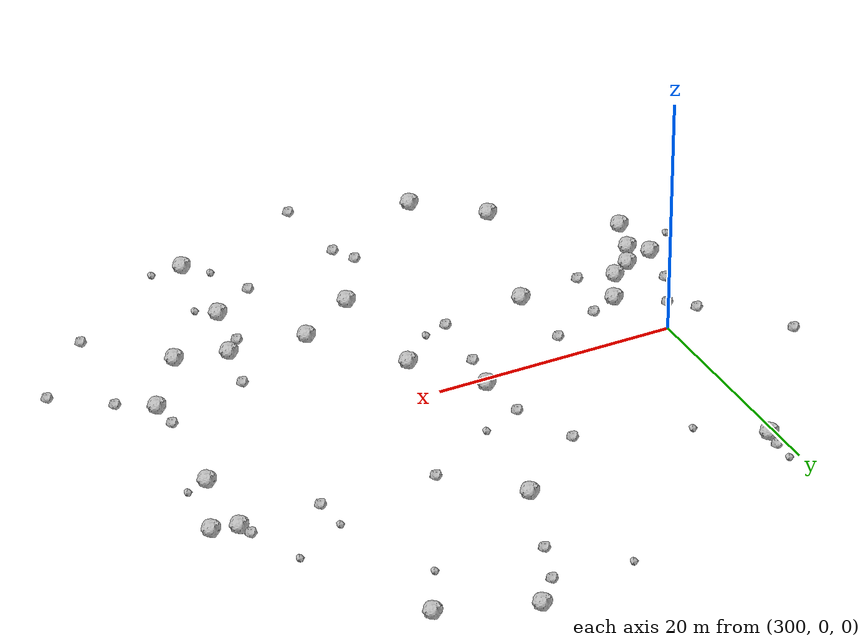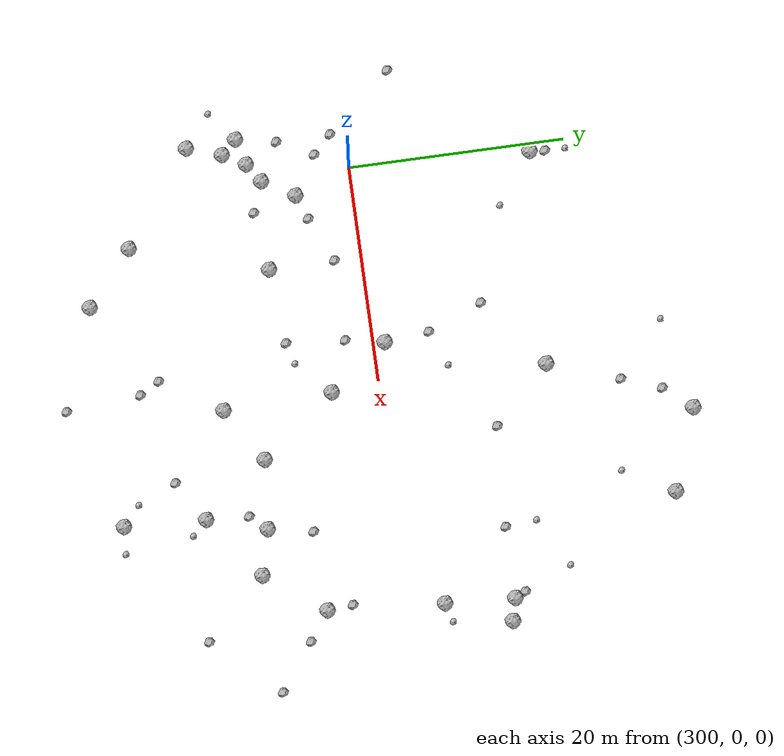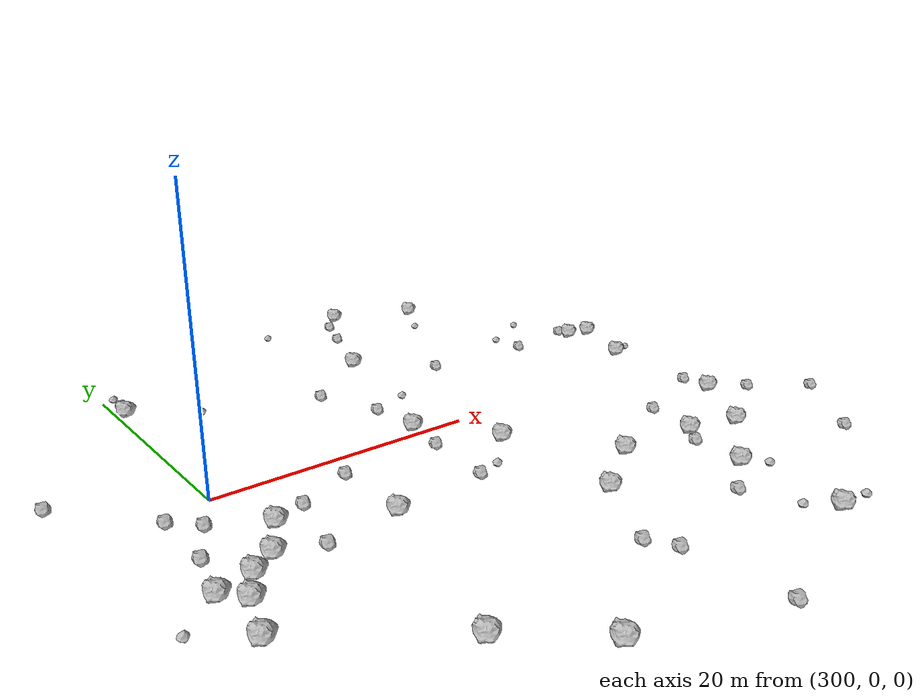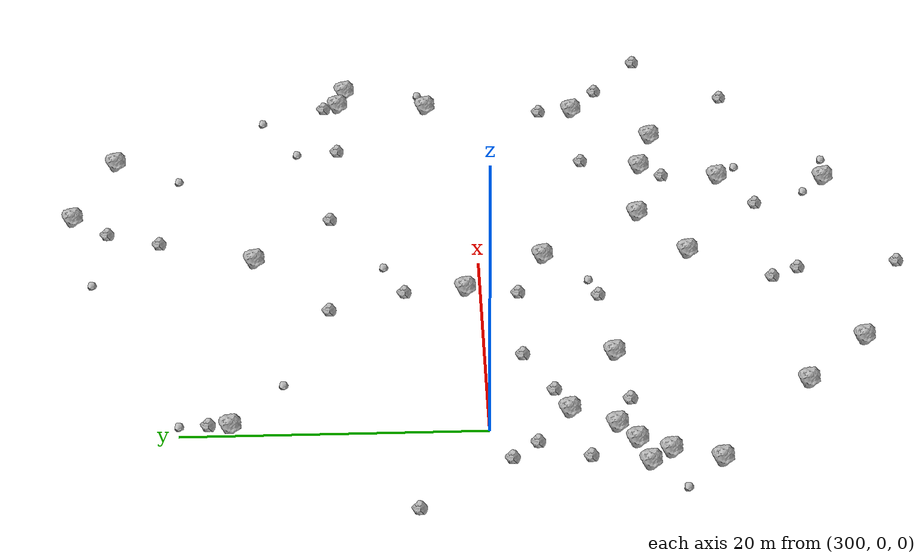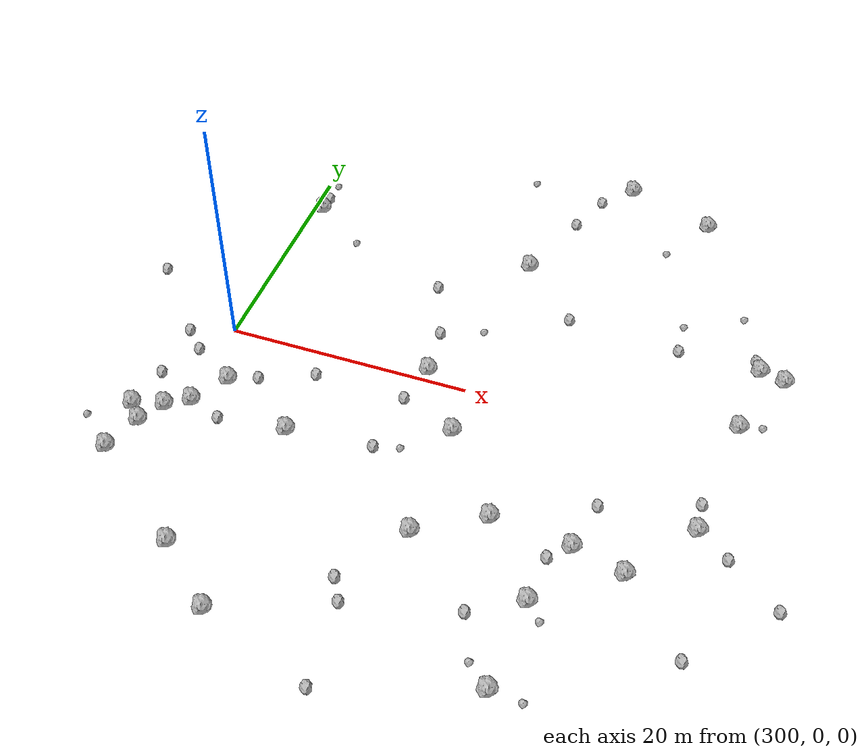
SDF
<sdf version="1.6">
 <world name="default">
  <include><uri>model://sun</uri></include>
  <model name="rock1_8_2">
   <include><uri>model://rock1</uri><pose>300.21895061276086 -8.251815372816342 0.5 0 0 0</pose></include>
  </model>
  <model name="rock1_8_3">
   <include><uri>model://rock1</uri><pose>330.221569935303 -24.97351319172097 0.5 0 0 0</pose></include>
  </model>
  <model name="rock1_8_4">
   <include><uri>model://rock1</uri><pose>296.2441149165959 -14.73329978082478 0.5 0 0 0</pose></include>
  </model>
  <model name="rock1_8_5">
   <include><uri>model://rock1</uri><pose>333.8312646661343 25.7018128934628 0.5 0 0 0</pose></include>
  </model>
  <model name="rock1_8_6">
   <include><uri>model://rock1</uri><pose>301.95447749576977 -5.274057773312094 0.5 0 0 0</pose></include>
  </model>
  <model name="rock1_8_7">
   <include><uri>model://rock1</uri><pose>304.7797349021711 -21.195768574800788 0.5 0 0 0</pose></include>
  </model>
  <model name="rock1_8_8">
   <include><uri>model://rock1</uri><pose>320.82980595162746 -14.502306280389405 0.5 0 0 0</pose></include>
  </model>
  <model name="rock1_8_9">
   <include><uri>model://rock1</uri><pose>341.15973696794094 3.2739126625653654 0.5 0 0 0</pose></include>
  </model>
  <model name="rock1_8_10">
   <include><uri>model://rock1</uri><pose>340.3385419488173 -7.483426396913771 0.5 0 0 0</pose></include>
  </model>
  <model name="rock1_8_11">
   <include><uri>model://rock1</uri><pose>326.38425510139416 28.371753462772972 0.5 0 0 0</pose></include>
  </model>
  <model name="rock1_8_12">
   <include><uri>model://rock1</uri><pose>320.5109344472249 -4.410531019913154 0.5 0 0 0</pose></include>
  </model>
  <model name="rock1_8_13">
   <include><uri>model://rock1</uri><pose>325.84274938886176 -11.354469488893756 0.5 0 0 0</pose></include>
  </model>
  <model name="rock1_8_14">
   <include><uri>model://rock1</uri><pose>297.2861858740251 -11.522851572936464 0.5 0 0 0</pose></include>
  </model>
  <model name="rock1_8_15">
   <include><uri>model://rock1</uri><pose>316.5597482914812 1.052475564629546 0.5 0 0 0</pose></include>
  </model>
  <model name="rock1_8_16">
   <include><uri>model://rock1</uri><pose>330.59372010199627 -17.407956326200726 0.5 0 0 0</pose></include>
  </model>
  <model name="rock1_8_17">
   <include><uri>model://rock1</uri><pose>309.7278840184557 -25.470225455457737 0.5 0 0 0</pose></include>
  </model>
  <model name="rock1_8_18">
   <include><uri>model://rock1</uri><pose>298.46663837510283 -9.428847777370532 0.5 0 0 0</pose></include>
  </model>
  <model name="rock1_8_19">
   <include><uri>model://rock1</uri><pose>343.5938877248549 9.220291261774904 0.5 0 0 0</pose></include>
  </model>
  <model name="rock1_8_20">
   <include><uri>model://rock1</uri><pose>308.4509832207535 -8.610142914687064 0.5 0 0 0</pose></include>
  </model>
  <model name="rock1_8_21">
   <include><uri>model://rock1</uri><pose>336.3677843654953 -12.978126235950722 0.5 0 0 0</pose></include>
  </model>
  <model name="rock1_8_22">
   <include><uri>model://rock1</uri><pose>296.0263094596844 -10.110837544471075 0.5 0 0 0</pose></include>
  </model>
  <model name="rock1_8_23">
   <include><uri>model://rock1</uri><pose>300.7802144279401 16.74485678176905 0.5 0 0 0</pose></include>
  </model>
  <model name="rock1_8_24">
   <include><uri>model://rock1</uri><pose>320.54136938747246 15.525382486513614 0.5 0 0 0</pose></include>
  </model>
  <model name="rock1_8_25">
   <include><uri>model://rock1</uri><pose>341.542494176639 9.722032759992054 0.5 0 0 0</pose></include>
  </model>
  <model name="rock1_8_26">
   <include><uri>model://rock1</uri><pose>332.210468578524 -11.930655859232257 0.5 0 0 0</pose></include>
  </model>
  <model name="rock2_8_0">
   <include><uri>model://rock2</uri><pose>314.0806285749021 10.342721572535055 0.3 0 0 0</pose></include>
  </model>
  <model name="rock2_8_1">
   <include><uri>model://rock2</uri><pose>334.9081290028005 9.774961096334764 0.3 0 0 0</pose></include>
  </model>
  <model name="rock2_8_2">
   <include><uri>model://rock2</uri><pose>300.8567572954638 18.160039665331034 0.3 0 0 0</pose></include>
  </model>
  <model name="rock2_8_3">
   <include><uri>model://rock2</uri><pose>324.16785146858183 25.83085351308589 0.3 0 0 0</pose></include>
  </model>
  <model name="rock2_8_4">
   <include><uri>model://rock2</uri><pose>340.1202873662296 -5.0827028493865996 0.3 0 0 0</pose></include>
  </model>
  <model name="rock2_8_5">
   <include><uri>model://rock2</uri><pose>341.0413102015267 10.751028371970769 0.3 0 0 0</pose></include>
  </model>
  <model name="rock2_8_6">
   <include><uri>model://rock2</uri><pose>308.3730282319164 -2.5022043843624644 0.3 0 0 0</pose></include>
  </model>
  <model name="rock2_8_7">
   <include><uri>model://rock2</uri><pose>330.7880905811319 -13.445276977123626 0.3 0 0 0</pose></include>
  </model>
  <model name="rock2_8_8">
   <include><uri>model://rock2</uri><pose>318.95806102655257 -28.812346879910226 0.3 0 0 0</pose></include>
  </model>
  <model name="rock2_8_9">
   <include><uri>model://rock2</uri><pose>303.0015662219848 -9.299415051660628 0.3 0 0 0</pose></include>
  </model>
  <model name="rock2_8_10">
   <include><uri>model://rock2</uri><pose>298.34689754677765 -3.048584402813553 0.3 0 0 0</pose></include>
  </model>
  <model name="rock2_8_11">
   <include><uri>model://rock2</uri><pose>325.6061992581757 10.286010063036798 0.3 0 0 0</pose></include>
  </model>
  <model name="rock2_8_12">
   <include><uri>model://rock2</uri><pose>304.19750992198647 -4.387542656696446 0.3 0 0 0</pose></include>
  </model>
  <model name="rock2_8_13">
   <include><uri>model://rock2</uri><pose>317.3111062005001 -20.053487913836015 0.3 0 0 0</pose></include>
  </model>
  <model name="rock2_8_14">
   <include><uri>model://rock2</uri><pose>347.1936034438891 -12.50214904449301 0.3 0 0 0</pose></include>
  </model>
  <model name="rock2_8_15">
   <include><uri>model://rock2</uri><pose>318.34831089311047 -21.890445911057945 0.3 0 0 0</pose></include>
  </model>
  <model name="rock2_8_16">
   <include><uri>model://rock2</uri><pose>326.8259486062037 -19.761997264163476 0.3 0 0 0</pose></include>
  </model>
  <model name="rock2_8_17">
   <include><uri>model://rock2</uri><pose>342.94826719654316 -9.352841442795064 0.3 0 0 0</pose></include>
  </model>
  <model name="rock2_8_18">
   <include><uri>model://rock2</uri><pose>291.44148153502414 4.7041434094687915 0.3 0 0 0</pose></include>
  </model>
  <model name="rock2_8_19">
   <include><uri>model://rock2</uri><pose>316.0958224884614 5.231209130671587 0.3 0 0 0</pose></include>
  </model>
  <model name="rock2_8_20">
   <include><uri>model://rock2</uri><pose>315.39390512086885 -7.9688149492837965 0.3 0 0 0</pose></include>
  </model>
  <model name="rock2_8_21">
   <include><uri>model://rock2</uri><pose>322.8192245889381 22.155965315105803 0.3 0 0 0</pose></include>
  </model>
  <model name="rock2_8_22">
   <include><uri>model://rock2</uri><pose>315.85293206260076 -2.519759091344625 0.3 0 0 0</pose></include>
  </model>
  <model name="rock2_8_23">
   <include><uri>model://rock2</uri><pose>341.72007163573267 -18.586232862646877 0.3 0 0 0</pose></include>
  </model>
  <model name="rock2_8_24">
   <include><uri>model://rock2</uri><pose>296.69350366749114 -6.371920266583317 0.3 0 0 0</pose></include>
  </model>
  <model name="rock2_8_25">
   <include><uri>model://rock2</uri><pose>332.97220324699003 -7.771924481833377 0.3 0 0 0</pose></include>
  </model>
  <model name="rock2_8_26">
   <include><uri>model://rock2</uri><pose>296.66356746059375 -1.3385467022173962 0.3 0 0 0</pose></include>
  </model>
  <model name="rock3_8_0">
   <include><uri>model://rock3</uri><pose>319.3817535726066 6.570434735829821 0.2 0 0 0</pose></include>
  </model>
  <model name="rock3_8_1">
   <include><uri>model://rock3</uri><pose>331.1941196821573 21.036809886018673 0.2 0 0 0</pose></include>
  </model>
  <model name="rock3_8_2">
   <include><uri>model://rock3</uri><pose>334.66218440130746 12.633734835263247 0.2 0 0 0</pose></include>
  </model>
  <model name="rock3_8_3">
   <include><uri>model://rock3</uri><pose>317.79002627396306 26.533446019535567 0.2 0 0 0</pose></include>
  </model>
  <model name="rock3_8_4">
   <include><uri>model://rock3</uri><pose>305.34400744430343 13.322108732771781 0.2 0 0 0</pose></include>
  </model>
  <model name="rock3_8_5">
   <include><uri>model://rock3</uri><pose>317.3690266946934 -7.433960132609318 0.2 0 0 0</pose></include>
  </model>
  <model name="rock3_8_6">
   <include><uri>model://rock3</uri><pose>332.7021982481469 -25.162977376474593 0.2 0 0 0</pose></include>
  </model>
  <model name="rock3_8_7">
   <include><uri>model://rock3</uri><pose>328.37720595978215 -23.407044470674137 0.2 0 0 0</pose></include>
  </model>
  <model name="rock3_8_8">
   <include><uri>model://rock3</uri><pose>339.17670100051964 15.162302543415763 0.2 0 0 0</pose></include>
  </model>
  <model name="rock3_8_9">
   <include><uri>model://rock3</uri><pose>300.8602240592397 20.012085003194088 0.2 0 0 0</pose></include>
  </model>
  <model name="rock3_8_10">
   <include><uri>model://rock3</uri><pose>331.8718925942145 -18.800953234128045 0.2 0 0 0</pose></include>
  </model>
  <model name="rock3_8_11">
   <include><uri>model://rock3</uri><pose>293.2389813900154 -12.327399020067702 0.2 0 0 0</pose></include>
  </model>
  <model name="rock3_8_12">
   <include><uri>model://rock3</uri><pose>342.8808807811538 3.7864497945604256 0.2 0 0 0</pose></include>
  </model>
 </world>
</sdf>
